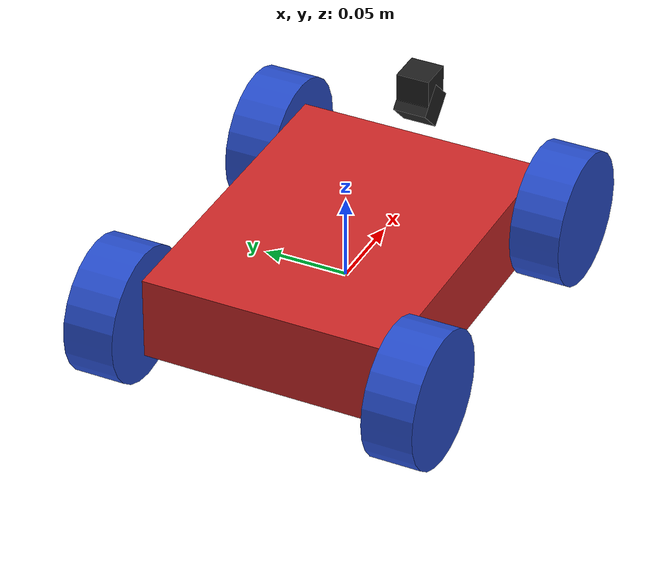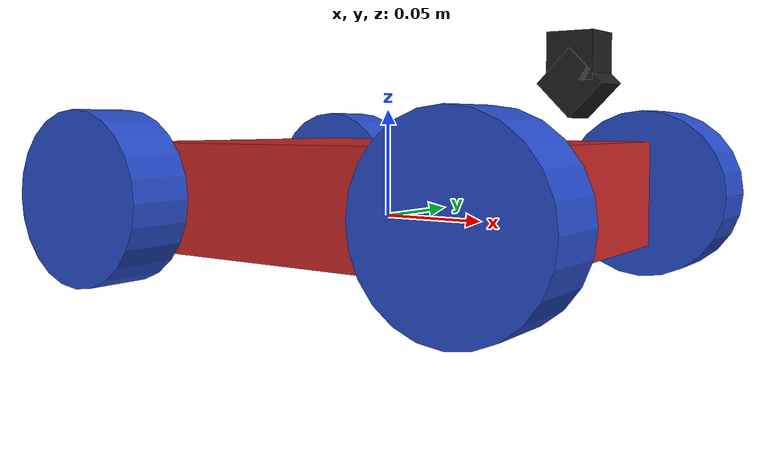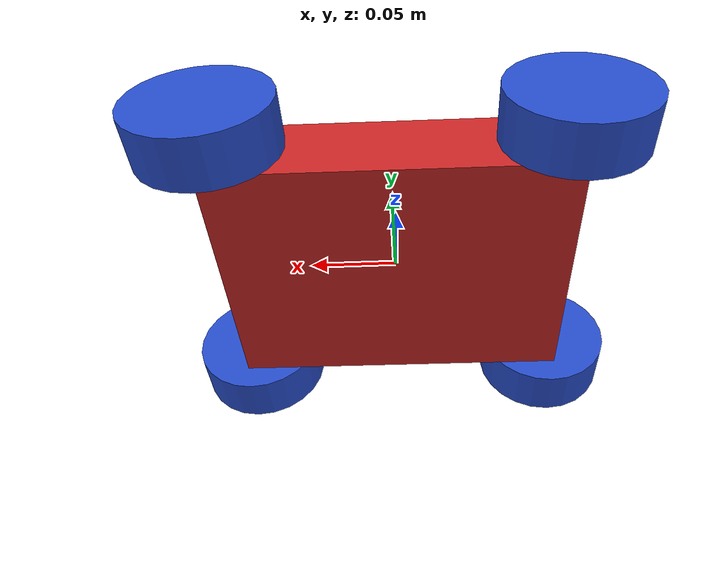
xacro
<?xml version='1.0'?>

<robot name="robot" xmlns:xacro="http://www.ros.org/wiki/xacro">

  <xacro:property name="chassis_width" value="0.15"/>
  <xacro:property name="chassis_length" value="0.2"/>
  <xacro:property name="chassis_height" value="0.05"/>
  <xacro:property name="chassis_mass" value="0.5"/>
  <xacro:property name="wheel_radius" value="0.04"/>
  <xacro:property name="wheel_width" value="0.03"/>
  <xacro:property name="wheel_mass" value="0.1"/>

  <xacro:include filename="$(find ros_test)/urdf/robot.gazebo" />
  <xacro:include filename="$(find ros_test)/urdf/macros.xacro" />

  <link name='chassis'>

    <xacro:box_inertial name="chassis" m="${chassis_mass}" x="${chassis_length}" y="${chassis_width}" z="${chassis_height}"/>

    <collision name='chassis_collision'>
      <geometry>
        <box size="${chassis_length} ${chassis_width} ${chassis_height}"/>
      </geometry>
    </collision>

    <visual name='chassis_visual'>
      <origin xyz="0 0 0.01" rpy=" 0 0 0"/>
      <geometry>
        <box size="${chassis_length} ${chassis_width} ${chassis_height}"/>
      </geometry>
    </visual>

  </link>

  <link name='back_left_wheel'>
    <xacro:cylinder_inertial name="back_left_wheel" m="${wheel_mass}" r="${wheel_radius}" h="${wheel_width}"/>

    <collision name='wheel_collision'>
      <origin xyz="0 0 0" rpy="1.5707 1.5707 0"/>
      <geometry>
        <cylinder length="${wheel_width}" radius="${wheel_radius}"/>
      </geometry>
    </collision>

    <visual name='back_left_wheel'>
      <origin xyz="0 0 0" rpy="1.5707 1.5707 0"/>
      <geometry>
        <cylinder length="${wheel_width}" radius="${wheel_radius}"/>
      </geometry>
    </visual>
  </link>

<link name='back_right_wheel'>
    <xacro:cylinder_inertial name="back_right_wheel" m="${wheel_mass}" r="${wheel_radius}" h="${wheel_width}"/>

    <collision name='wheel_collision'>
      <origin xyz="0 0 0" rpy="1.5707 1.5707 0"/>
      <geometry>
        <cylinder length="${wheel_width}" radius="${wheel_radius}"/>
      </geometry>
    </collision>

    <visual name='back_right_wheel'>
      <origin xyz="0 0 0" rpy="1.5707 1.5707 0"/>
      <geometry>
        <cylinder length="${wheel_width}" radius="${wheel_radius}"/>
      </geometry>
    </visual>
  </link>

<link name='front_left_wheel'>
    <xacro:cylinder_inertial name="front_left_wheel" m="${wheel_mass}" r="${wheel_radius}" h="${wheel_width}"/>

    <collision name='wheel_collision'>
      <origin xyz="0 0 0" rpy="1.5707 1.5707 0"/>
      <geometry>
        <cylinder length="${wheel_width}" radius="${wheel_radius}"/>
      </geometry>
    </collision>

    <visual name='front_left_wheel'>
      <origin xyz="0 0 0" rpy="1.5707 1.5707 0"/>
      <geometry>
        <cylinder length="${wheel_width}" radius="${wheel_radius}"/>
      </geometry>
    </visual>
  </link>

<link name='front_right_wheel'>
    <xacro:cylinder_inertial name="front_right_wheel" m="${wheel_mass}" r="${wheel_radius}" h="${wheel_width}"/>

    <collision name='wheel_collision'>
      <origin xyz="0 0 0" rpy="1.5707 1.5707 0"/>
      <geometry>
        <cylinder length="${wheel_width}" radius="${wheel_radius}"/>
      </geometry>
    </collision>

    <visual name='front_right_wheel'>
      <origin xyz="0 0 0" rpy="1.5707 1.5707 0"/>
      <geometry>
        <cylinder length="${wheel_width}" radius="${wheel_radius}"/>
      </geometry>
    </visual>
  </link>

  <joint name="chassis_to_front_left_wheel" type="continuous">
    <axis xyz="0 1 0"/>
    <parent link="chassis"/>
    <child link="front_left_wheel"/>
    <origin xyz="0.096 0.09 0.01"/>
  </joint>

  <joint name="chassis_to_back_left_wheel" type="continuous">
    <axis xyz="0 1 0"/>
    <parent link="chassis"/>
    <child link="back_left_wheel"/>
    <origin xyz="-0.096 0.09 0.01"/>
  </joint>

  <joint name="chassis_to_front_right_wheel" type="continuous">
    <axis xyz="0 1 0"/>
    <parent link="chassis"/>
    <child link="front_right_wheel"/>
    <origin xyz="0.096 -0.09 0.01"/>
  </joint>

  <joint name="chassis_to_back_right_wheel" type="continuous">
    <axis xyz="0 1 0"/>
    <parent link="chassis"/>
    <child link="back_right_wheel"/>
    <origin xyz="-0.096 -0.09 0.01"/>
  </joint>

  <link name="linefollow_camera_link">
    <collision>
      <geometry>
        <box size="0.1 0.1 0.1"/>
      </geometry>
    </collision>

    <visual>
      <origin xyz="0 0 0" rpy="0 0 0"/>
      <geometry>
        <box size="0.02 0.02 0.02"/>
      </geometry>
    </visual>
  </link>

  <joint name="linefollow_camera_joint" type="fixed">
    <origin xyz="0.096 0 0.06" rpy="0 0.785 0"/>
    <parent link="chassis"/>
    <child link="linefollow_camera_link"/>
  </joint>

  <link name="face_detection_camera_link">
    <collision>
      <geometry>
        <box size="0.1 0.1 0.1"/>
      </geometry>
    </collision>

    <visual>
      <origin xyz="0 0 0" rpy="0 0 0"/>
      <geometry>
        <box size="0.02 0.02 0.02"/>
      </geometry>
    </visual>
  </link>

  <joint name="face_detection_camera_joint" type="fixed">
    <origin xyz="0.096 0 0.071" rpy="0 0 0"/>
    <parent link="chassis"/>
    <child link="face_detection_camera_link"/>
  </joint>

</robot>
